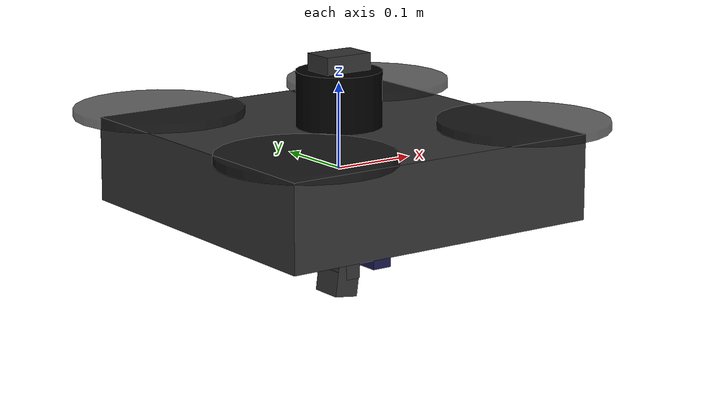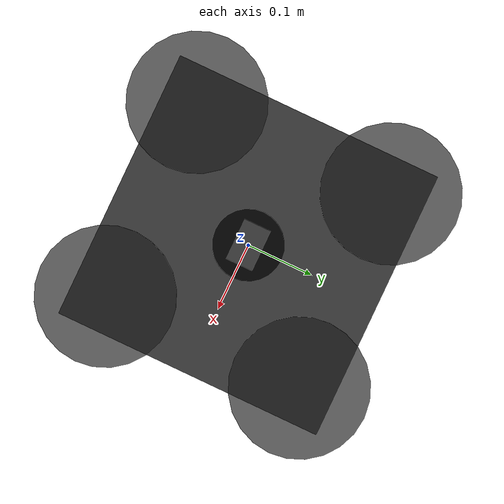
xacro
<?xml version="1.0"?>
<robot name="firewardenbot_drone" xmlns:xacro="http://ros.org/wiki/xacro">

  <xacro:include filename="$(find 41068_ignition_bringup)/urdf/common_properties.urdf.xacro"/>
  <xacro:include filename="$(find 41068_ignition_bringup)/urdf/camera_sensors.urdf.xacro"/>

  <!-- Drone base properties -->
  <xacro:property name="drone_mass" value="2.5"/>
  <xacro:property name="drone_size" value="0.4"/>
  <xacro:property name="rotor_radius" value="0.1"/>
  <xacro:property name="rotor_mass" value="0.05"/>

  <!-- Base link (drone body) -->
  <link name="base_link">
    <visual>
      <origin xyz="0 0 0" rpy="0 0 0"/>
      <geometry>
        <box size="${drone_size} ${drone_size} 0.1"/>
      </geometry>
      <material name="drone_body">
        <color rgba="0.2 0.2 0.2 1.0"/>
      </material>
    </visual>
    <collision>
      <origin xyz="0 0 0" rpy="0 0 0"/>
      <geometry>
        <box size="${drone_size} ${drone_size} 0.1"/>
      </geometry>
    </collision>
    <inertial>
      <origin xyz="0 0 0" rpy="0 0 0"/>
      <mass value="${drone_mass}"/>
      <inertia ixx="0.0347563" ixy="0" ixz="0" iyy="0.0458929" iyz="0" izz="0.0977"/>
    </inertial>
  </link>

  <!-- Rotor links and joints -->
  <xacro:macro name="rotor" params="rotor_id direction x y">
    <link name="rotor_${rotor_id}">
      <visual>
        <origin xyz="0 0 0" rpy="0 0 0"/>
        <geometry>
          <cylinder radius="${rotor_radius}" length="0.01"/>
        </geometry>
        <material name="rotor_material">
          <color rgba="0.1 0.1 0.1 0.7"/>
        </material>
      </visual>
      <collision>
        <origin xyz="0 0 0" rpy="0 0 0"/>
        <geometry>
          <cylinder radius="${rotor_radius}" length="0.01"/>
        </geometry>
      </collision>
      <inertial>
        <origin xyz="0 0 0" rpy="0 0 0"/>
        <mass value="${rotor_mass}"/>
        <inertia ixx="1e-6" ixy="0" ixz="0" iyy="1e-6" iyz="0" izz="1e-6"/>
      </inertial>
    </link>

    <joint name="rotor_${rotor_id}_joint" type="continuous">
      <parent link="base_link"/>
      <child link="rotor_${rotor_id}"/>
      <origin xyz="${x} ${y} 0.06" rpy="0 0 0"/>
      <axis xyz="0 0 1"/>
    </joint>

    <!-- Gazebo rotor plugin -->
    <gazebo reference="rotor_${rotor_id}">
      <material>Gazebo/DarkGrey</material>
    </gazebo>
  </xacro:macro>

  <!-- Four rotors -->
  <xacro:rotor rotor_id="0" direction="ccw" x="0.15" y="0.15"/>
  <xacro:rotor rotor_id="1" direction="cw" x="-0.15" y="0.15"/>
  <xacro:rotor rotor_id="2" direction="ccw" x="-0.15" y="-0.15"/>
  <xacro:rotor rotor_id="3" direction="cw" x="0.15" y="-0.15"/>

  <!-- Computer Vision Sensors for Drone -->

  <!-- Main downward-facing camera for fire detection -->
  <xacro:rgb_camera name="drone_camera" parent_link="base_link"
                   xyz="0 0 -0.1" rpy="0 1.57 0"/>

  <!-- Thermal camera for heat signature detection -->
  <xacro:thermal_camera name="drone_thermal_camera" parent_link="base_link"
                       xyz="0.05 0 -0.1" rpy="0 1.57 0"/>

  <!-- Forward-facing camera for navigation -->
  <xacro:rgb_camera name="drone_nav_camera" parent_link="base_link"
                   xyz="0.1 0 0" rpy="0 0 0"/>

  <!-- Stereo cameras for obstacle avoidance -->
  <xacro:rgb_camera name="drone_camera_left" parent_link="base_link"
                   xyz="0.08 0.03 0" rpy="0 0 0"/>
  <xacro:rgb_camera name="drone_camera_right" parent_link="base_link"
                   xyz="0.08 -0.03 0" rpy="0 0 0"/>

  <!-- Wide-angle surveillance camera -->
  <xacro:rgb_camera name="drone_wide_camera" parent_link="base_link"
                   xyz="0 0 -0.12" rpy="0 1.7 0"/>

  <!-- LiDAR for 3D mapping -->
  <xacro:lidar_camera name="drone_lidar" parent_link="base_link"
                     xyz="0 0 0.08" rpy="0 0 0"/>

  <!-- Gazebo plugins -->
  <gazebo>
    <!-- Multirotor motor model -->
    <plugin filename="libignition-gazebo-multicopter-motor-model-system.so"
            name="ignition::gazebo::systems::MulticopterMotorModel">
      <robotNamespace></robotNamespace>
      <jointName>rotor_0_joint</jointName>
      <linkName>rotor_0</linkName>
      <turningDirection>ccw</turningDirection>
      <timeConstantUp>0.0125</timeConstantUp>
      <timeConstantDown>0.025</timeConstantDown>
      <maxRotVelocity>1500</maxRotVelocity>
      <motorConstant>5.84e-06</motorConstant>
      <momentConstant>0.06</momentConstant>
      <commandSubTopic>/gazebo/command/motor_speed</commandSubTopic>
      <motorNumber>0</motorNumber>
      <rotorDragCoefficient>0.000175</rotorDragCoefficient>
      <rollingMomentCoefficient>1e-06</rollingMomentCoefficient>
      <motorSpeedPubTopic>/motor_speed/0</motorSpeedPubTopic>
      <rotorVelocitySlowdownSim>10</rotorVelocitySlowdownSim>
    </plugin>

    <plugin filename="libignition-gazebo-multicopter-motor-model-system.so"
            name="ignition::gazebo::systems::MulticopterMotorModel">
      <robotNamespace></robotNamespace>
      <jointName>rotor_1_joint</jointName>
      <linkName>rotor_1</linkName>
      <turningDirection>cw</turningDirection>
      <timeConstantUp>0.0125</timeConstantUp>
      <timeConstantDown>0.025</timeConstantDown>
      <maxRotVelocity>1500</maxRotVelocity>
      <motorConstant>5.84e-06</motorConstant>
      <momentConstant>0.06</momentConstant>
      <commandSubTopic>/gazebo/command/motor_speed</commandSubTopic>
      <motorNumber>1</motorNumber>
      <rotorDragCoefficient>0.000175</rotorDragCoefficient>
      <rollingMomentCoefficient>1e-06</rollingMomentCoefficient>
      <motorSpeedPubTopic>/motor_speed/1</motorSpeedPubTopic>
      <rotorVelocitySlowdownSim>10</rotorVelocitySlowdownSim>
    </plugin>

    <plugin filename="libignition-gazebo-multicopter-motor-model-system.so"
            name="ignition::gazebo::systems::MulticopterMotorModel">
      <robotNamespace></robotNamespace>
      <jointName>rotor_2_joint</jointName>
      <linkName>rotor_2</linkName>
      <turningDirection>ccw</turningDirection>
      <timeConstantUp>0.0125</timeConstantUp>
      <timeConstantDown>0.025</timeConstantDown>
      <maxRotVelocity>1500</maxRotVelocity>
      <motorConstant>5.84e-06</motorConstant>
      <momentConstant>0.06</momentConstant>
      <commandSubTopic>/gazebo/command/motor_speed</commandSubTopic>
      <motorNumber>2</motorNumber>
      <rotorDragCoefficient>0.000175</rotorDragCoefficient>
      <rollingMomentCoefficient>1e-06</rollingMomentCoefficient>
      <motorSpeedPubTopic>/motor_speed/2</motorSpeedPubTopic>
      <rotorVelocitySlowdownSim>10</rotorVelocitySlowdownSim>
    </plugin>

    <plugin filename="libignition-gazebo-multicopter-motor-model-system.so"
            name="ignition::gazebo::systems::MulticopterMotorModel">
      <robotNamespace></robotNamespace>
      <jointName>rotor_3_joint</jointName>
      <linkName>rotor_3</linkName>
      <turningDirection>cw</turningDirection>
      <timeConstantUp>0.0125</timeConstantUp>
      <timeConstantDown>0.025</timeConstantDown>
      <maxRotVelocity>1500</maxRotVelocity>
      <motorConstant>5.84e-06</motorConstant>
      <momentConstant>0.06</momentConstant>
      <commandSubTopic>/gazebo/command/motor_speed</commandSubTopic>
      <motorNumber>3</motorNumber>
      <rotorDragCoefficient>0.000175</rotorDragCoefficient>
      <rollingMomentCoefficient>1e-06</rollingMomentCoefficient>
      <motorSpeedPubTopic>/motor_speed/3</motorSpeedPubTopic>
      <rotorVelocitySlowdownSim>10</rotorVelocitySlowdownSim>
    </plugin>

    <!-- Multicopter control -->
    <plugin filename="libignition-gazebo-multicopter-control-system.so"
            name="ignition::gazebo::systems::MulticopterVelocityControl">
      <robotNamespace></robotNamespace>
      <commandSubTopic>/cmd_vel</commandSubTopic>
      <motorControlPubTopic>/gazebo/command/motor_speed</motorControlPubTopic>
      <enableSubTopic>/enable_motors</enableSubTopic>
      <comLinkName>base_link</comLinkName>
      <velocityGain>2.7 2.7 2.7</velocityGain>
      <attitudeGain>3.0 3.0 0.15</attitudeGain>
      <angularRateGain>0.52 0.52 0.025</angularRateGain>
      <maximumLinearAcceleration>2 2 2</maximumLinearAcceleration>
      <maximumLinearVelocity>5 5 5</maximumLinearVelocity>
      <maximumAngularVelocity>3 3 3</maximumAngularVelocity>
      <linearVelocityNoiseMean>0 0 0</linearVelocityNoiseMean>
      <linearVelocityNoiseStdDev>0.1 0.1 0.1</linearVelocityNoiseStdDev>
      <angularVelocityNoiseMean>0 0 0</angularVelocityNoiseMean>
      <angularVelocityNoiseStdDev>0.05 0.05 0.05</angularVelocityNoiseStdDev>
    </plugin>

    <!-- IMU sensor -->
    <plugin filename="libignition-gazebo-imu-system.so" name="ignition::gazebo::systems::Imu">
    </plugin>
  </gazebo>

  <!-- IMU link -->
  <link name="imu_link">
    <inertial>
      <origin xyz="0 0 0" rpy="0 0 0"/>
      <mass value="0.001"/>
      <inertia ixx="1e-6" ixy="0" ixz="0" iyy="1e-6" iyz="0" izz="1e-6"/>
    </inertial>
  </link>

  <joint name="imu_joint" type="fixed">
    <parent link="base_link"/>
    <child link="imu_link"/>
    <origin xyz="0 0 0" rpy="0 0 0"/>
  </joint>

  <!-- Gazebo IMU sensor -->
  <gazebo reference="imu_link">
    <sensor type="imu" name="imu_sensor">
      <always_on>1</always_on>
      <update_rate>100</update_rate>
      <visualize>true</visualize>
      <plugin filename="libignition-gazebo-imu-system.so" name="ignition::gazebo::systems::Imu">
      </plugin>
    </sensor>
  </gazebo>

</robot>

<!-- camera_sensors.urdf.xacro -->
<robot xmlns:xacro="http://ros.org/wiki/xacro">

  <!-- Camera properties -->
  <xacro:property name="camera_width" value="0.06"/>
  <xacro:property name="camera_height" value="0.04"/>
  <xacro:property name="camera_depth" value="0.03"/>
  <xacro:property name="camera_mass" value="0.1"/>

  <!-- Thermal camera properties -->
  <xacro:property name="thermal_width" value="0.05"/>
  <xacro:property name="thermal_height" value="0.035"/>
  <xacro:property name="thermal_depth" value="0.025"/>
  <xacro:property name="thermal_mass" value="0.08"/>

  <!-- RGB Camera Macro -->
  <xacro:macro name="rgb_camera" params="name parent_link xyz rpy">
    <!-- Camera link -->
    <link name="${name}_link">
      <visual>
        <origin xyz="0 0 0" rpy="0 0 0"/>
        <geometry>
          <box size="${camera_width} ${camera_height} ${camera_depth}"/>
        </geometry>
        <material name="camera_material">
          <color rgba="0.2 0.2 0.2 1.0"/>
        </material>
      </visual>
      <collision>
        <origin xyz="0 0 0" rpy="0 0 0"/>
        <geometry>
          <box size="${camera_width} ${camera_height} ${camera_depth}"/>
        </geometry>
      </collision>
      <inertial>
        <origin xyz="0 0 0" rpy="0 0 0"/>
        <mass value="${camera_mass}"/>
        <inertia ixx="1e-6" ixy="0" ixz="0" iyy="1e-6" iyz="0" izz="1e-6"/>
      </inertial>
    </link>

    <!-- Camera joint -->
    <joint name="${name}_joint" type="fixed">
      <parent link="${parent_link}"/>
      <child link="${name}_link"/>
      <origin xyz="${xyz}" rpy="${rpy}"/>
    </joint>

    <!-- Camera optical frame -->
    <link name="${name}_optical_frame"/>
    <joint name="${name}_optical_joint" type="fixed">
      <parent link="${name}_link"/>
      <child link="${name}_optical_frame"/>
      <origin xyz="0 0 0" rpy="-1.5708 0 -1.5708"/>
    </joint>

    <!-- Gazebo camera plugin -->
    <gazebo reference="${name}_link">
      <sensor type="camera" name="${name}_sensor">
        <update_rate>30</update_rate>
        <visualize>true</visualize>
        <camera name="${name}">
          <horizontal_fov>1.3962634</horizontal_fov>
          <image>
            <width>1920</width>
            <height>1080</height>
            <format>R8G8B8</format>
          </image>
          <clip>
            <near>0.02</near>
            <far>300</far>
          </clip>
          <noise>
            <type>gaussian</type>
            <mean>0.0</mean>
            <stddev>0.007</stddev>
          </noise>
        </camera>
        <plugin filename="libignition-gazebo-camera-system.so" name="ignition::gazebo::systems::Camera">
        </plugin>
      </sensor>
      <material>Gazebo/DarkGrey</material>
    </gazebo>
  </xacro:macro>

  <!-- Thermal Camera Macro -->
  <xacro:macro name="thermal_camera" params="name parent_link xyz rpy">
    <!-- Thermal camera link -->
    <link name="${name}_link">
      <visual>
        <origin xyz="0 0 0" rpy="0 0 0"/>
        <geometry>
          <box size="${thermal_width} ${thermal_height} ${thermal_depth}"/>
        </geometry>
        <material name="thermal_material">
          <color rgba="0.1 0.1 0.3 1.0"/>
        </material>
      </visual>
      <collision>
        <origin xyz="0 0 0" rpy="0 0 0"/>
        <geometry>
          <box size="${thermal_width} ${thermal_height} ${thermal_depth}"/>
        </geometry>
      </collision>
      <inertial>
        <origin xyz="0 0 0" rpy="0 0 0"/>
        <mass value="${thermal_mass}"/>
        <inertia ixx="1e-6" ixy="0" ixz="0" iyy="1e-6" iyz="0" izz="1e-6"/>
      </inertial>
    </link>

    <!-- Thermal camera joint -->
    <joint name="${name}_joint" type="fixed">
      <parent link="${parent_link}"/>
      <child link="${name}_link"/>
      <origin xyz="${xyz}" rpy="${rpy}"/>
    </joint>

    <!-- Thermal camera optical frame -->
    <link name="${name}_optical_frame"/>
    <joint name="${name}_optical_joint" type="fixed">
      <parent link="${name}_link"/>
      <child link="${name}_optical_frame"/>
      <origin xyz="0 0 0" rpy="-1.5708 0 -1.5708"/>
    </joint>

    <!-- Gazebo thermal camera plugin -->
    <gazebo reference="${name}_link">
      <sensor type="thermal_camera" name="${name}_sensor">
        <update_rate>10</update_rate>
        <visualize>true</visualize>
        <camera name="${name}">
          <horizontal_fov>1.0472</horizontal_fov>
          <image>
            <width>640</width>
            <height>480</height>
            <format>L8</format>
          </image>
          <clip>
            <near>0.1</near>
            <far>100</far>
          </clip>
        </camera>
        <plugin filename="libignition-gazebo-thermal-camera-system.so" name="ignition::gazebo::systems::ThermalCamera">
        </plugin>
      </sensor>
      <material>Gazebo/Blue</material>
    </gazebo>
  </xacro:macro>

  <!-- Stereo Camera Macro -->
  <xacro:macro name="stereo_camera" params="name parent_link xyz rpy baseline">
    <!-- Left camera -->
    <xacro:rgb_camera name="${name}_left" parent_link="${parent_link}"
                     xyz="${xyz}" rpy="${rpy}"/>

    <!-- Right camera -->
    <xacro:rgb_camera name="${name}_right" parent_link="${parent_link}"
                     xyz="${xyz.replace('0', str(float(xyz.split()[1]) + baseline))}" rpy="${rpy}"/>
  </xacro:macro>

  <!-- LiDAR Camera Macro (combines LiDAR with camera) -->
  <xacro:macro name="lidar_camera" params="name parent_link xyz rpy">
    <!-- LiDAR link -->
    <link name="${name}_lidar_link">
      <visual>
        <origin xyz="0 0 0" rpy="0 0 0"/>
        <geometry>
          <cylinder radius="0.05" length="0.07"/>
        </geometry>
        <material name="lidar_material">
          <color rgba="0.0 0.0 0.0 1.0"/>
        </material>
      </visual>
      <collision>
        <origin xyz="0 0 0" rpy="0 0 0"/>
        <geometry>
          <cylinder radius="0.05" length="0.07"/>
        </geometry>
      </collision>
      <inertial>
        <origin xyz="0 0 0" rpy="0 0 0"/>
        <mass value="0.3"/>
        <inertia ixx="1e-6" ixy="0" ixz="0" iyy="1e-6" iyz="0" izz="1e-6"/>
      </inertial>
    </link>

    <!-- LiDAR joint -->
    <joint name="${name}_lidar_joint" type="fixed">
      <parent link="${parent_link}"/>
      <child link="${name}_lidar_link"/>
      <origin xyz="${xyz}" rpy="${rpy}"/>
    </joint>

    <!-- Add camera to LiDAR -->
    <xacro:rgb_camera name="${name}_camera" parent_link="${name}_lidar_link"
                     xyz="0 0 0.04" rpy="0 0 0"/>

    <!-- Gazebo LiDAR plugin -->
    <gazebo reference="${name}_lidar_link">
      <sensor type="gpu_lidar" name="${name}_lidar_sensor">
        <update_rate>10</update_rate>
        <visualize>true</visualize>
        <lidar>
          <scan>
            <horizontal>
              <samples>360</samples>
              <resolution>1</resolution>
              <min_angle>-3.141592</min_angle>
              <max_angle>3.141592</max_angle>
            </horizontal>
            <vertical>
              <samples>16</samples>
              <resolution>1</resolution>
              <min_angle>-0.261799</min_angle>
              <max_angle>0.261799</max_angle>
            </vertical>
          </scan>
          <range>
            <min>0.1</min>
            <max>100.0</max>
            <resolution>0.01</resolution>
          </range>
          <noise>
            <type>gaussian</type>
            <mean>0.0</mean>
            <stddev>0.01</stddev>
          </noise>
        </lidar>
        <plugin filename="libignition-gazebo-lidar-system.so" name="ignition::gazebo::systems::Lidar">
        </plugin>
      </sensor>
      <material>Gazebo/Black</material>
    </gazebo>
  </xacro:macro>

</robot>
